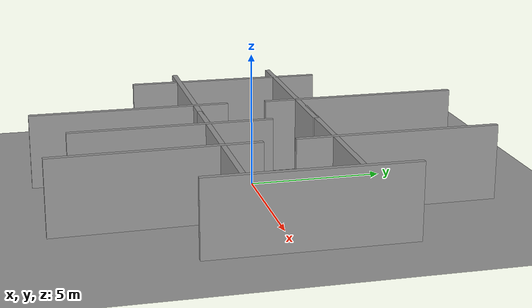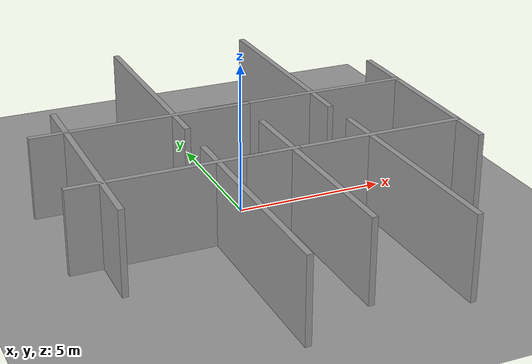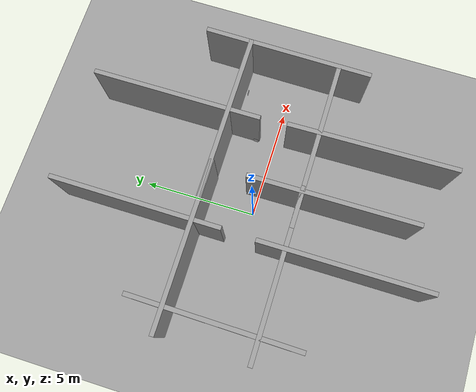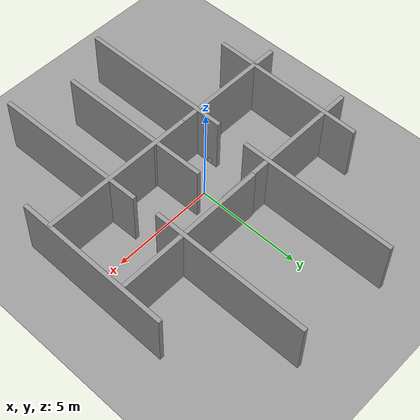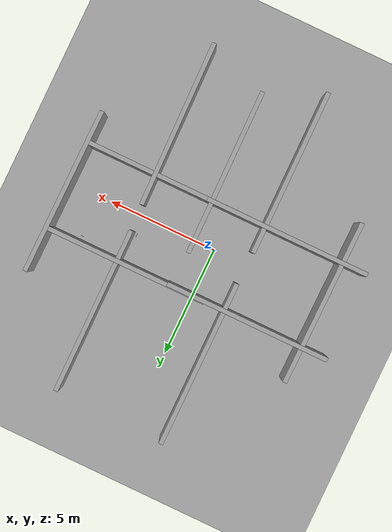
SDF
<sdf version="1.4">
 <world name="default">
  <light name="sun" type="directional">
   <pose>0 0 10 0 -0 0</pose>
   <diffuse>0.8 0.8 0.8 1</diffuse>
   <specular>0.2 0.2 0.2 1</specular>
   <attenuation>
    <range>1000</range>
    <constant>0.9</constant>
    <linear>0.01</linear>
    <quadratic>0.001</quadratic>
   </attenuation>
   <direction>0.5 0.1 -0.9</direction>
  </light>
  <scene><ambient>0.4 0.4 0.4 1</ambient><background>0.7 0.7 0.7 1</background><shadows>1</shadows></scene>
  <physics type="ode">
   <max_step_size>0.01</max_step_size>
   <real_time_factor>1</real_time_factor>
   <real_time_update_rate>100</real_time_update_rate>
   <gravity>0 0 -9.8</gravity>
  </physics>
  <model name="ground_plane_0">
   <static>1</static>
   <link name="link">
    <collision name="collision">
     <geometry><plane><normal>0 0 1</normal><size>100 100</size></plane></geometry>
     <surface><friction><ode><mu>100</mu><mu2>50</mu2></ode></friction></surface>
    </collision>
    <visual name="visual">
     <cast_shadows>0</cast_shadows>
     <geometry><plane><normal>0 0 1</normal><size>100 100</size></plane></geometry>
     <material>
      <script><uri>file://media/materials/scripts/gazebo.material</uri><name>Gazebo/Grey</name></script>
     </material>
    </visual>
    <velocity_decay><linear>0</linear><angular>0</angular></velocity_decay>
   </link>
   <pose>0.497681 0 0 0 -0 0</pose>
  </model>
  <spherical_coordinates>
   <surface_model>EARTH_WGS84</surface_model>
   <latitude_deg>0</latitude_deg>
   <longitude_deg>0</longitude_deg>
   <elevation>0</elevation>
   <heading_deg>0</heading_deg>
  </spherical_coordinates>
  <model name="grey_wall">
   <static>1</static>
   <link name="link">
    <pose>0 0 1.4 0 -0 0</pose>
    <collision name="collision"><geometry><box><size>7.5 0.2 2.8</size></box></geometry></collision>
    <visual name="visual">
     <cast_shadows>0</cast_shadows>
     <geometry><box><size>7.5 0.2 2.8</size></box></geometry>
     <material>
      <script>
       <uri>model://grey_wall/materials/scripts</uri>
       <uri>model://grey_wall/materials/textures</uri>
       <name>vrc/grey_wall</name>
      </script>
     </material>
    </visual>
    <velocity_decay><linear>0</linear><angular>0</angular></velocity_decay>
   </link>
   <pose>-2.53703 -1.84451 0 0 -0 0</pose>
  </model>
  <model name="grey_wall_0">
   <static>1</static>
   <link name="link">
    <pose>0 0 1.4 0 -0 0</pose>
    <collision name="collision"><geometry><box><size>7.5 0.2 2.8</size></box></geometry></collision>
    <visual name="visual">
     <cast_shadows>0</cast_shadows>
     <geometry><box><size>7.5 0.2 2.8</size></box></geometry>
     <material>
      <script>
       <uri>model://grey_wall/materials/scripts</uri>
       <uri>model://grey_wall/materials/textures</uri>
       <name>vrc/grey_wall</name>
      </script>
     </material>
    </visual>
    <velocity_decay><linear>0</linear><angular>0</angular></velocity_decay>
   </link>
   <pose>-2.55526 2.13439 0 0 -0 0</pose>
  </model>
  <model name="grey_wall_4">
   <static>1</static>
   <link name="link">
    <pose>0 0 1.4 0 -0 0</pose>
    <collision name="collision"><geometry><box><size>7.5 0.2 2.8</size></box></geometry></collision>
    <visual name="visual">
     <cast_shadows>0</cast_shadows>
     <geometry><box><size>7.5 0.2 2.8</size></box></geometry>
     <material>
      <script>
       <uri>model://grey_wall/materials/scripts</uri>
       <uri>model://grey_wall/materials/textures</uri>
       <name>vrc/grey_wall</name>
      </script>
     </material>
    </visual>
    <velocity_decay><linear>0</linear><angular>0</angular></velocity_decay>
   </link>
   <pose>-5.11062 0.013312 0 0 0 -1.5812</pose>
  </model>
  <model name="grey_wall_5">
   <static>1</static>
   <link name="link">
    <pose>0 0 1.4 0 -0 0</pose>
    <collision name="collision"><geometry><box><size>7.5 0.2 2.8</size></box></geometry></collision>
    <visual name="visual">
     <cast_shadows>0</cast_shadows>
     <geometry><box><size>7.5 0.2 2.8</size></box></geometry>
     <material>
      <script>
       <uri>model://grey_wall/materials/scripts</uri>
       <uri>model://grey_wall/materials/textures</uri>
       <name>vrc/grey_wall</name>
      </script>
     </material>
    </visual>
    <velocity_decay><linear>0</linear><angular>0</angular></velocity_decay>
   </link>
   <pose>-1.50203 -4.35407 0 0 0 -1.56777</pose>
  </model>
  <model name="grey_wall_6">
   <static>1</static>
   <link name="link">
    <pose>0 0 1.4 0 -0 0</pose>
    <collision name="collision"><geometry><box><size>7.5 0.2 2.8</size></box></geometry></collision>
    <visual name="visual">
     <cast_shadows>0</cast_shadows>
     <geometry><box><size>7.5 0.2 2.8</size></box></geometry>
     <material>
      <script>
       <uri>model://grey_wall/materials/scripts</uri>
       <uri>model://grey_wall/materials/textures</uri>
       <name>vrc/grey_wall</name>
      </script>
     </material>
    </visual>
    <velocity_decay><linear>0</linear><angular>0</angular></velocity_decay>
   </link>
   <pose>3.69502 -4.17262 0 0 0 -1.55144</pose>
  </model>
  <model name="grey_wall_7">
   <static>1</static>
   <link name="link">
    <pose>0 0 1.4 0 -0 0</pose>
    <collision name="collision"><geometry><box><size>7.5 0.2 2.8</size></box></geometry></collision>
    <visual name="visual">
     <cast_shadows>0</cast_shadows>
     <geometry><box><size>7.5 0.2 2.8</size></box></geometry>
     <material>
      <script>
       <uri>model://grey_wall/materials/scripts</uri>
       <uri>model://grey_wall/materials/textures</uri>
       <name>vrc/grey_wall</name>
      </script>
     </material>
    </visual>
    <velocity_decay><linear>0</linear><angular>0</angular></velocity_decay>
   </link>
   <pose>-1.46388 4.61252 0 0 0 -1.57202</pose>
  </model>
  <model name="grey_wall_9">
   <static>1</static>
   <link name="link">
    <pose>0 0 1.4 0 -0 0</pose>
    <collision name="collision"><geometry><box><size>7.5 0.2 2.8</size></box></geometry></collision>
    <visual name="visual">
     <cast_shadows>0</cast_shadows>
     <geometry><box><size>7.5 0.2 2.8</size></box></geometry>
     <material>
      <script>
       <uri>model://grey_wall/materials/scripts</uri>
       <uri>model://grey_wall/materials/textures</uri>
       <name>vrc/grey_wall</name>
      </script>
     </material>
    </visual>
    <velocity_decay><linear>0</linear><angular>0</angular></velocity_decay>
   </link>
   <pose>6.84581 0.469501 0 0 0 -1.57661</pose>
  </model>
  <model name="grey_wall_10">
   <static>1</static>
   <link name="link">
    <pose>0 0 1.4 0 -0 0</pose>
    <collision name="collision"><geometry><box><size>7.5 0.2 2.8</size></box></geometry></collision>
    <visual name="visual">
     <cast_shadows>0</cast_shadows>
     <geometry><box><size>7.5 0.2 2.8</size></box></geometry>
     <material>
      <script>
       <uri>model://grey_wall/materials/scripts</uri>
       <uri>model://grey_wall/materials/textures</uri>
       <name>vrc/grey_wall</name>
      </script>
     </material>
    </visual>
    <velocity_decay><linear>0</linear><angular>0</angular></velocity_decay>
   </link>
   <pose>3.12628 -1.8469 0 0 -0 0</pose>
  </model>
  <model name="grey_wall_11">
   <static>1</static>
   <link name="link">
    <pose>0 0 1.4 0 -0 0</pose>
    <collision name="collision"><geometry><box><size>7.5 0.2 2.8</size></box></geometry></collision>
    <visual name="visual">
     <cast_shadows>0</cast_shadows>
     <geometry><box><size>7.5 0.2 2.8</size></box></geometry>
     <material>
      <script>
       <uri>model://grey_wall/materials/scripts</uri>
       <uri>model://grey_wall/materials/textures</uri>
       <name>vrc/grey_wall</name>
      </script>
     </material>
    </visual>
    <velocity_decay><linear>0</linear><angular>0</angular></velocity_decay>
   </link>
   <pose>3.19559 2.17157 0 0 -0 0</pose>
  </model>
  <model name="grey_wall_12">
   <static>1</static>
   <link name="link">
    <pose>0 0 1.4 0 -0 0</pose>
    <collision name="collision"><geometry><box><size>7.5 0.2 2.8</size></box></geometry></collision>
    <visual name="visual">
     <cast_shadows>0</cast_shadows>
     <geometry><box><size>7.5 0.2 2.8</size></box></geometry>
     <material>
      <script>
       <uri>model://grey_wall/materials/scripts</uri>
       <uri>model://grey_wall/materials/textures</uri>
       <name>vrc/grey_wall</name>
      </script>
     </material>
    </visual>
    <velocity_decay><linear>0</linear><angular>0</angular></velocity_decay>
   </link>
   <pose>3.5339 4.49574 0 0 0 -1.5674</pose>
  </model>
  <model name="green_image_0">
   <static>0</static>
   <link name="link">
    <collision name="collision">
     <geometry><box><size>0.2 0.2 0.02</size></box></geometry>
     <surface><friction><ode><mu>100</mu><mu2>50</mu2></ode></friction></surface>
    </collision>
    <visual name="visual">
     <pose>0 -0.11 0.4 1.57 1.57 -1.57</pose>
     <cast_shadows>0</cast_shadows>
     <geometry><plane><normal>0 0 1</normal><size>0.297 0.21</size></plane></geometry>
     <material>
      <script>
       <uri>model://green_image/materials/scripts</uri>
       <uri>model://green_image/materials/textures</uri>
       <name>green_image/Image</name>
      </script>
     </material>
    </visual>
    <velocity_decay><linear>0</linear><angular>0</angular></velocity_decay>
    <inertial>
     <inertia><ixx>1</ixx><ixy>0</ixy><ixz>0</ixz><iyy>1</iyy><iyz>0</iyz><izz>1</izz></inertia>
     <mass>1</mass>
    </inertial>
   </link>
   <pose>3.33544 0.977927 0.009997 2e-06 3e-05 -0.0335</pose>
  </model>
  <model name="red_image_flip">
   <static>0</static>
   <link name="link">
    <collision name="collision">
     <geometry><box><size>0.01 0.01 0.05</size></box></geometry>
     <surface><friction><ode><mu>100</mu><mu2>50</mu2></ode></friction></surface>
    </collision>
    <visual name="visual">
     <pose>0 0 0.15 1.57 1.57 1.57319</pose>
     <cast_shadows>0</cast_shadows>
     <geometry><plane><normal>0 0 1</normal><size>0.297 0.21</size></plane></geometry>
     <material>
      <script>
       <uri>model://red_image/materials/scripts</uri>
       <uri>model://red_image/materials/textures</uri>
       <name>red_image/Image</name>
      </script>
     </material>
    </visual>
    <velocity_decay><linear>0</linear><angular>0</angular></velocity_decay>
    <inertial>
     <inertia><ixx>1</ixx><ixy>0</ixy><ixz>0</ixz><iyy>1</iyy><iyz>0</iyz><izz>1</izz></inertia>
     <mass>1</mass>
    </inertial>
   </link>
   <pose>-1.40716 -0.999996 0.025 -5.4e-05 -4.9e-05 0.001957</pose>
  </model>
  <model name="cluedo_character">
   <static>0</static>
   <link name="link">
    <collision name="collision">
     <geometry><box><size>0.2 0.2 0.2</size></box></geometry>
     <surface><friction><ode><mu>100</mu><mu2>50</mu2></ode></friction></surface>
    </collision>
    <visual name="visual">
     <pose>-1 -0.7 0.4 1.57 -0 0</pose>
     <cast_shadows>0</cast_shadows>
     <geometry><plane><normal>0 0 1</normal><size>0.21 0.297</size></plane></geometry>
     <material>
      <script>
       <uri>model://cluedo_character/materials/scripts</uri>
       <uri>model://cluedo_character/materials/textures</uri>
       <name>Cluedo_character/Image</name>
      </script>
     </material>
    </visual>
    <velocity_decay><linear>0</linear><angular>0</angular></velocity_decay>
    <inertial>
     <inertia><ixx>1</ixx><ixy>0</ixy><ixz>0</ixz><iyy>1</iyy><iyz>0</iyz><izz>1</izz></inertia>
     <mass>1</mass>
    </inertial>
   </link>
   <pose>6.44254 2.59883 0.099997 3.4e-05 2e-06 6.3e-05</pose>
  </model>
  <model name="grey_wall_1">
   <static>1</static>
   <link name="link">
    <pose>0 0 1.4 0 -0 0</pose>
    <collision name="collision"><geometry><box><size>7.5 0.2 2.8</size></box></geometry></collision>
    <visual name="visual">
     <cast_shadows>0</cast_shadows>
     <geometry><box><size>7.5 0.2 2.8</size></box></geometry>
     <material>
      <script>
       <uri>model://grey_wall/materials/scripts</uri>
       <uri>model://grey_wall/materials/textures</uri>
       <name>vrc/grey_wall</name>
      </script>
     </material>
    </visual>
    <velocity_decay><linear>0</linear><angular>0</angular></velocity_decay>
   </link>
   <pose>1.00237 -3.18513 0 0 -0 1.5812</pose>
  </model>
 </world>
</sdf>
